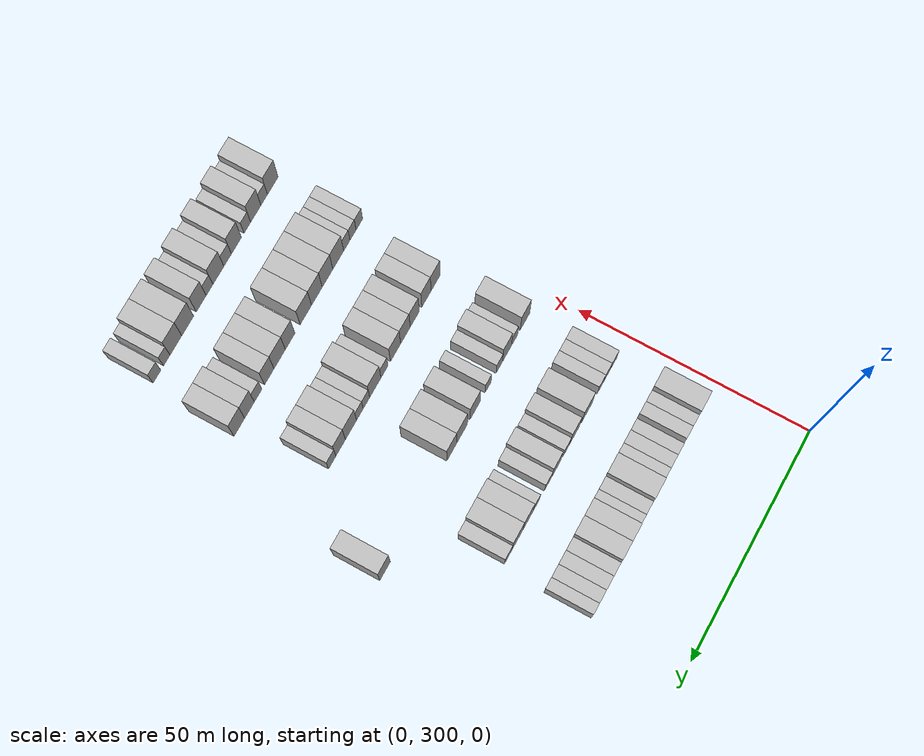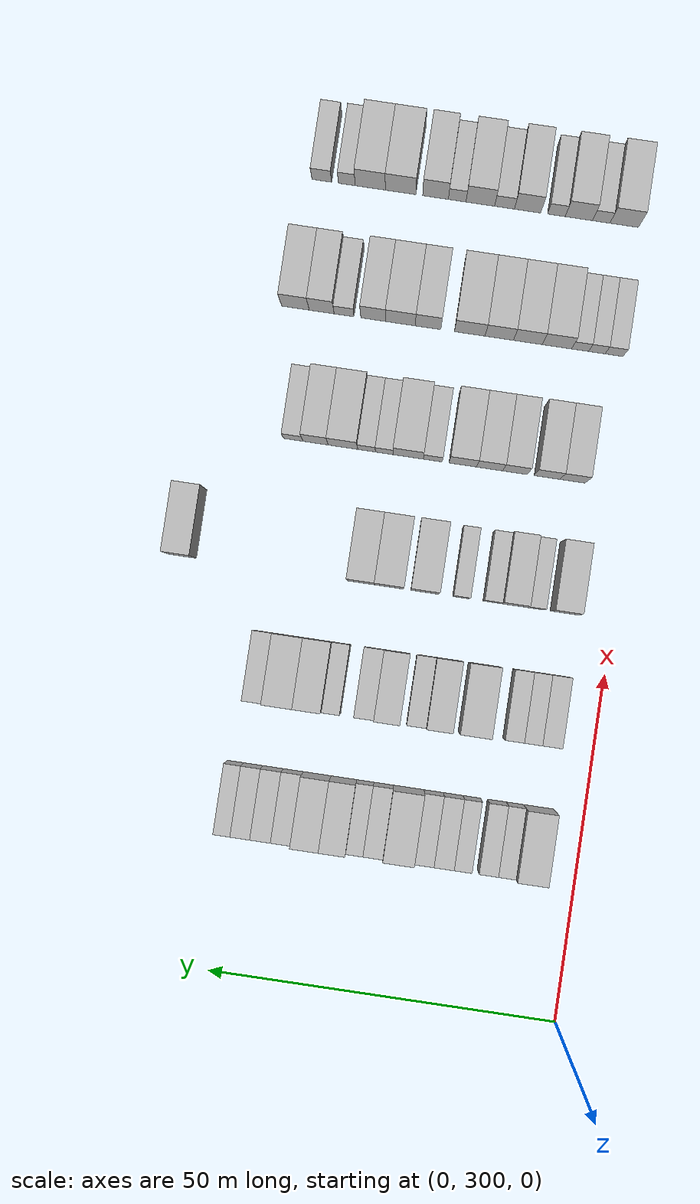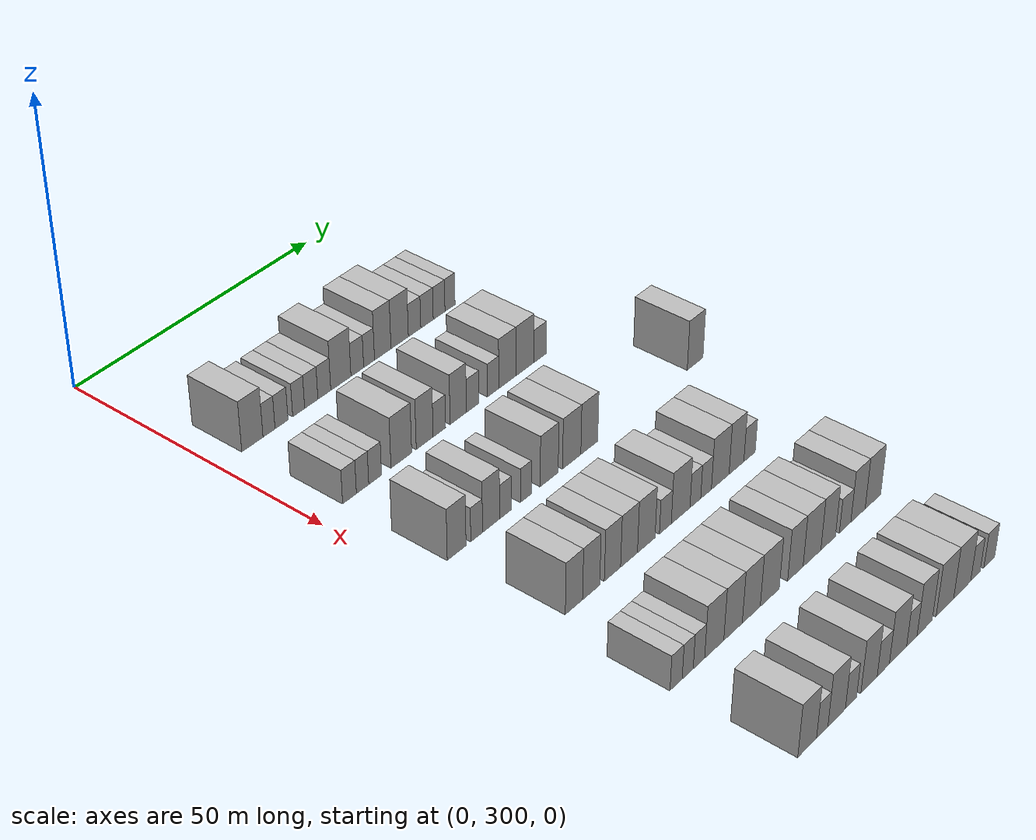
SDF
<sdf version="1.6">
 <world name="default">
  <model name="building_153">
   <static>1</static>
   <pose>25.0000 306.7224 0 0.000000 0.000000 0.000000</pose>
   <link name="link">
    <pose>0 0 4.50 0 0 0</pose>
    <collision name="collision"><geometry><box><size>10.0000 4.3547 9.0000</size></box></geometry></collision>
    <visual name="visual">
     <cast_shadows>0</cast_shadows>
     <geometry><box><size>10.0000 4.3547 9.0000</size></box></geometry>
     <material>
      <script>
       <uri>model://HANNAS_wall/materials/scripts</uri>
       <uri>model://HANNAS_wall/materials/textures</uri>
       <name>vrc/HANNAS_wall</name>
      </script>
     </material>
    </visual>
   </link>
  </model>
  <model name="building_154">
   <static>1</static>
   <pose>25.0000 310.1467 0 0.000000 0.000000 0.000000</pose>
   <link name="link">
    <pose>0 0 3.00 0 0 0</pose>
    <collision name="collision"><geometry><box><size>10.0000 2.4941 6.0000</size></box></geometry></collision>
    <visual name="visual">
     <cast_shadows>0</cast_shadows>
     <geometry><box><size>10.0000 2.4941 6.0000</size></box></geometry>
     <material>
      <script>
       <uri>model://HANNAS_wall/materials/scripts</uri>
       <uri>model://HANNAS_wall/materials/textures</uri>
       <name>vrc/HANNAS_wall</name>
      </script>
     </material>
    </visual>
   </link>
  </model>
  <model name="building_155">
   <static>1</static>
   <pose>25.0000 312.7570 0 0.000000 0.000000 0.000000</pose>
   <link name="link">
    <pose>0 0 3.00 0 0 0</pose>
    <collision name="collision"><geometry><box><size>10.0000 2.7265 6.0000</size></box></geometry></collision>
    <visual name="visual">
     <cast_shadows>0</cast_shadows>
     <geometry><box><size>10.0000 2.7265 6.0000</size></box></geometry>
     <material>
      <script>
       <uri>model://HANNAS_wall/materials/scripts</uri>
       <uri>model://HANNAS_wall/materials/textures</uri>
       <name>vrc/HANNAS_wall</name>
      </script>
     </material>
    </visual>
   </link>
  </model>
  <model name="building_156">
   <static>1</static>
   <pose>25.0000 316.3849 0 0.000000 0.000000 0.000000</pose>
   <link name="link">
    <pose>0 0 3.00 0 0 0</pose>
    <collision name="collision"><geometry><box><size>10.0000 2.5293 6.0000</size></box></geometry></collision>
    <visual name="visual">
     <cast_shadows>0</cast_shadows>
     <geometry><box><size>10.0000 2.5293 6.0000</size></box></geometry>
     <material>
      <script>
       <uri>model://HANNAS_wall/materials/scripts</uri>
       <uri>model://HANNAS_wall/materials/textures</uri>
       <name>vrc/HANNAS_wall</name>
      </script>
     </material>
    </visual>
   </link>
  </model>
  <model name="building_157">
   <static>1</static>
   <pose>25.0000 319.0718 0 0.000000 0.000000 0.000000</pose>
   <link name="link">
    <pose>0 0 3.00 0 0 0</pose>
    <collision name="collision"><geometry><box><size>10.0000 2.8444 6.0000</size></box></geometry></collision>
    <visual name="visual">
     <cast_shadows>0</cast_shadows>
     <geometry><box><size>10.0000 2.8444 6.0000</size></box></geometry>
     <material>
      <script>
       <uri>model://HANNAS_wall/materials/scripts</uri>
       <uri>model://HANNAS_wall/materials/textures</uri>
       <name>vrc/HANNAS_wall</name>
      </script>
     </material>
    </visual>
   </link>
  </model>
  <model name="building_158">
   <static>1</static>
   <pose>25.0000 321.8928 0 0.000000 0.000000 0.000000</pose>
   <link name="link">
    <pose>0 0 3.00 0 0 0</pose>
    <collision name="collision"><geometry><box><size>10.0000 2.7976 6.0000</size></box></geometry></collision>
    <visual name="visual">
     <cast_shadows>0</cast_shadows>
     <geometry><box><size>10.0000 2.7976 6.0000</size></box></geometry>
     <material>
      <script>
       <uri>model://HANNAS_wall/materials/scripts</uri>
       <uri>model://HANNAS_wall/materials/textures</uri>
       <name>vrc/HANNAS_wall</name>
      </script>
     </material>
    </visual>
   </link>
  </model>
  <model name="building_159">
   <static>1</static>
   <pose>25.0000 325.5044 0 0.000000 0.000000 0.000000</pose>
   <link name="link">
    <pose>0 0 4.50 0 0 0</pose>
    <collision name="collision"><geometry><box><size>10.0000 4.4257 9.0000</size></box></geometry></collision>
    <visual name="visual">
     <cast_shadows>0</cast_shadows>
     <geometry><box><size>10.0000 4.4257 9.0000</size></box></geometry>
     <material>
      <script>
       <uri>model://HANNAS_wall/materials/scripts</uri>
       <uri>model://HANNAS_wall/materials/textures</uri>
       <name>vrc/HANNAS_wall</name>
      </script>
     </material>
    </visual>
   </link>
  </model>
  <model name="building_160">
   <static>1</static>
   <pose>25.0000 329.1309 0 0.000000 0.000000 0.000000</pose>
   <link name="link">
    <pose>0 0 3.00 0 0 0</pose>
    <collision name="collision"><geometry><box><size>10.0000 2.8272 6.0000</size></box></geometry></collision>
    <visual name="visual">
     <cast_shadows>0</cast_shadows>
     <geometry><box><size>10.0000 2.8272 6.0000</size></box></geometry>
     <material>
      <script>
       <uri>model://HANNAS_wall/materials/scripts</uri>
       <uri>model://HANNAS_wall/materials/textures</uri>
       <name>vrc/HANNAS_wall</name>
      </script>
     </material>
    </visual>
   </link>
  </model>
  <model name="building_161">
   <static>1</static>
   <pose>25.0000 331.7644 0 0.000000 0.000000 0.000000</pose>
   <link name="link">
    <pose>0 0 3.00 0 0 0</pose>
    <collision name="collision"><geometry><box><size>10.0000 2.4399 6.0000</size></box></geometry></collision>
    <visual name="visual">
     <cast_shadows>0</cast_shadows>
     <geometry><box><size>10.0000 2.4399 6.0000</size></box></geometry>
     <material>
      <script>
       <uri>model://HANNAS_wall/materials/scripts</uri>
       <uri>model://HANNAS_wall/materials/textures</uri>
       <name>vrc/HANNAS_wall</name>
      </script>
     </material>
    </visual>
   </link>
  </model>
  <model name="building_162">
   <static>1</static>
   <pose>25.0000 334.8556 0 0.000000 0.000000 0.000000</pose>
   <link name="link">
    <pose>0 0 4.50 0 0 0</pose>
    <collision name="collision"><geometry><box><size>10.0000 3.7426 9.0000</size></box></geometry></collision>
    <visual name="visual">
     <cast_shadows>0</cast_shadows>
     <geometry><box><size>10.0000 3.7426 9.0000</size></box></geometry>
     <material>
      <script>
       <uri>model://HANNAS_wall/materials/scripts</uri>
       <uri>model://HANNAS_wall/materials/textures</uri>
       <name>vrc/HANNAS_wall</name>
      </script>
     </material>
    </visual>
   </link>
  </model>
  <model name="building_163">
   <static>1</static>
   <pose>25.0000 338.7249 0 0.000000 0.000000 0.000000</pose>
   <link name="link">
    <pose>0 0 4.50 0 0 0</pose>
    <collision name="collision"><geometry><box><size>10.0000 3.9961 9.0000</size></box></geometry></collision>
    <visual name="visual">
     <cast_shadows>0</cast_shadows>
     <geometry><box><size>10.0000 3.9961 9.0000</size></box></geometry>
     <material>
      <script>
       <uri>model://HANNAS_wall/materials/scripts</uri>
       <uri>model://HANNAS_wall/materials/textures</uri>
       <name>vrc/HANNAS_wall</name>
      </script>
     </material>
    </visual>
   </link>
  </model>
  <model name="building_164">
   <static>1</static>
   <pose>25.0000 342.1689 0 0.000000 0.000000 0.000000</pose>
   <link name="link">
    <pose>0 0 3.00 0 0 0</pose>
    <collision name="collision"><geometry><box><size>10.0000 2.8919 6.0000</size></box></geometry></collision>
    <visual name="visual">
     <cast_shadows>0</cast_shadows>
     <geometry><box><size>10.0000 2.8919 6.0000</size></box></geometry>
     <material>
      <script>
       <uri>model://HANNAS_wall/materials/scripts</uri>
       <uri>model://HANNAS_wall/materials/textures</uri>
       <name>vrc/HANNAS_wall</name>
      </script>
     </material>
    </visual>
   </link>
  </model>
  <model name="building_165">
   <static>1</static>
   <pose>25.0000 345.0794 0 0.000000 0.000000 0.000000</pose>
   <link name="link">
    <pose>0 0 3.00 0 0 0</pose>
    <collision name="collision"><geometry><box><size>10.0000 2.9290 6.0000</size></box></geometry></collision>
    <visual name="visual">
     <cast_shadows>0</cast_shadows>
     <geometry><box><size>10.0000 2.9290 6.0000</size></box></geometry>
     <material>
      <script>
       <uri>model://HANNAS_wall/materials/scripts</uri>
       <uri>model://HANNAS_wall/materials/textures</uri>
       <name>vrc/HANNAS_wall</name>
      </script>
     </material>
    </visual>
   </link>
  </model>
  <model name="building_166">
   <static>1</static>
   <pose>25.0000 347.9365 0 0.000000 0.000000 0.000000</pose>
   <link name="link">
    <pose>0 0 3.00 0 0 0</pose>
    <collision name="collision"><geometry><box><size>10.0000 2.7851 6.0000</size></box></geometry></collision>
    <visual name="visual">
     <cast_shadows>0</cast_shadows>
     <geometry><box><size>10.0000 2.7851 6.0000</size></box></geometry>
     <material>
      <script>
       <uri>model://HANNAS_wall/materials/scripts</uri>
       <uri>model://HANNAS_wall/materials/textures</uri>
       <name>vrc/HANNAS_wall</name>
      </script>
     </material>
    </visual>
   </link>
  </model>
  <model name="building_167">
   <static>1</static>
   <pose>25.0000 350.5345 0 0.000000 0.000000 0.000000</pose>
   <link name="link">
    <pose>0 0 3.00 0 0 0</pose>
    <collision name="collision"><geometry><box><size>10.0000 2.4109 6.0000</size></box></geometry></collision>
    <visual name="visual">
     <cast_shadows>0</cast_shadows>
     <geometry><box><size>10.0000 2.4109 6.0000</size></box></geometry>
     <material>
      <script>
       <uri>model://HANNAS_wall/materials/scripts</uri>
       <uri>model://HANNAS_wall/materials/textures</uri>
       <name>vrc/HANNAS_wall</name>
      </script>
     </material>
    </visual>
   </link>
  </model>
  <model name="building_334">
   <static>1</static>
   <pose>44.0000 306.4995 0 0.000000 0.000000 0.000000</pose>
   <link name="link">
    <pose>0 0 3.00 0 0 0</pose>
    <collision name="collision"><geometry><box><size>10.0000 2.8513 6.0000</size></box></geometry></collision>
    <visual name="visual">
     <cast_shadows>0</cast_shadows>
     <geometry><box><size>10.0000 2.8513 6.0000</size></box></geometry>
     <material>
      <script>
       <uri>model://HANNAS_wall/materials/scripts</uri>
       <uri>model://HANNAS_wall/materials/textures</uri>
       <name>vrc/HANNAS_wall</name>
      </script>
     </material>
    </visual>
   </link>
  </model>
  <model name="building_335">
   <static>1</static>
   <pose>44.0000 309.2142 0 0.000000 0.000000 0.000000</pose>
   <link name="link">
    <pose>0 0 3.00 0 0 0</pose>
    <collision name="collision"><geometry><box><size>10.0000 2.5780 6.0000</size></box></geometry></collision>
    <visual name="visual">
     <cast_shadows>0</cast_shadows>
     <geometry><box><size>10.0000 2.5780 6.0000</size></box></geometry>
     <material>
      <script>
       <uri>model://HANNAS_wall/materials/scripts</uri>
       <uri>model://HANNAS_wall/materials/textures</uri>
       <name>vrc/HANNAS_wall</name>
      </script>
     </material>
    </visual>
   </link>
  </model>
  <model name="building_336">
   <static>1</static>
   <pose>44.0000 311.8596 0 0.000000 0.000000 0.000000</pose>
   <link name="link">
    <pose>0 0 3.00 0 0 0</pose>
    <collision name="collision"><geometry><box><size>10.0000 2.7128 6.0000</size></box></geometry></collision>
    <visual name="visual">
     <cast_shadows>0</cast_shadows>
     <geometry><box><size>10.0000 2.7128 6.0000</size></box></geometry>
     <material>
      <script>
       <uri>model://HANNAS_wall/materials/scripts</uri>
       <uri>model://HANNAS_wall/materials/textures</uri>
       <name>vrc/HANNAS_wall</name>
      </script>
     </material>
    </visual>
   </link>
  </model>
  <model name="building_337">
   <static>1</static>
   <pose>44.0000 317.4468 0 0.000000 0.000000 0.000000</pose>
   <link name="link">
    <pose>0 0 4.50 0 0 0</pose>
    <collision name="collision"><geometry><box><size>10.0000 4.4616 9.0000</size></box></geometry></collision>
    <visual name="visual">
     <cast_shadows>0</cast_shadows>
     <geometry><box><size>10.0000 4.4616 9.0000</size></box></geometry>
     <material>
      <script>
       <uri>model://HANNAS_wall/materials/scripts</uri>
       <uri>model://HANNAS_wall/materials/textures</uri>
       <name>vrc/HANNAS_wall</name>
      </script>
     </material>
    </visual>
   </link>
  </model>
  <model name="building_338">
   <static>1</static>
   <pose>44.0000 322.5323 0 0.000000 0.000000 0.000000</pose>
   <link name="link">
    <pose>0 0 4.50 0 0 0</pose>
    <collision name="collision"><geometry><box><size>10.0000 3.7095 9.0000</size></box></geometry></collision>
    <visual name="visual">
     <cast_shadows>0</cast_shadows>
     <geometry><box><size>10.0000 3.7095 9.0000</size></box></geometry>
     <material>
      <script>
       <uri>model://HANNAS_wall/materials/scripts</uri>
       <uri>model://HANNAS_wall/materials/textures</uri>
       <name>vrc/HANNAS_wall</name>
      </script>
     </material>
    </visual>
   </link>
  </model>
  <model name="building_339">
   <static>1</static>
   <pose>44.0000 325.7754 0 0.000000 0.000000 0.000000</pose>
   <link name="link">
    <pose>0 0 3.00 0 0 0</pose>
    <collision name="collision"><geometry><box><size>10.0000 2.7767 6.0000</size></box></geometry></collision>
    <visual name="visual">
     <cast_shadows>0</cast_shadows>
     <geometry><box><size>10.0000 2.7767 6.0000</size></box></geometry>
     <material>
      <script>
       <uri>model://HANNAS_wall/materials/scripts</uri>
       <uri>model://HANNAS_wall/materials/textures</uri>
       <name>vrc/HANNAS_wall</name>
      </script>
     </material>
    </visual>
   </link>
  </model>
  <model name="building_340">
   <static>1</static>
   <pose>44.0000 330.0010 0 0.000000 0.000000 0.000000</pose>
   <link name="link">
    <pose>0 0 4.50 0 0 0</pose>
    <collision name="collision"><geometry><box><size>10.0000 3.6745 9.0000</size></box></geometry></collision>
    <visual name="visual">
     <cast_shadows>0</cast_shadows>
     <geometry><box><size>10.0000 3.6745 9.0000</size></box></geometry>
     <material>
      <script>
       <uri>model://HANNAS_wall/materials/scripts</uri>
       <uri>model://HANNAS_wall/materials/textures</uri>
       <name>vrc/HANNAS_wall</name>
      </script>
     </material>
    </visual>
   </link>
  </model>
  <model name="building_341">
   <static>1</static>
   <pose>44.0000 333.2734 0 0.000000 0.000000 0.000000</pose>
   <link name="link">
    <pose>0 0 3.00 0 0 0</pose>
    <collision name="collision"><geometry><box><size>10.0000 2.8703 6.0000</size></box></geometry></collision>
    <visual name="visual">
     <cast_shadows>0</cast_shadows>
     <geometry><box><size>10.0000 2.8703 6.0000</size></box></geometry>
     <material>
      <script>
       <uri>model://HANNAS_wall/materials/scripts</uri>
       <uri>model://HANNAS_wall/materials/textures</uri>
       <name>vrc/HANNAS_wall</name>
      </script>
     </material>
    </visual>
   </link>
  </model>
  <model name="building_342">
   <static>1</static>
   <pose>44.0000 337.9946 0 0.000000 0.000000 0.000000</pose>
   <link name="link">
    <pose>0 0 3.00 0 0 0</pose>
    <collision name="collision"><geometry><box><size>10.0000 2.5721 6.0000</size></box></geometry></collision>
    <visual name="visual">
     <cast_shadows>0</cast_shadows>
     <geometry><box><size>10.0000 2.5721 6.0000</size></box></geometry>
     <material>
      <script>
       <uri>model://HANNAS_wall/materials/scripts</uri>
       <uri>model://HANNAS_wall/materials/textures</uri>
       <name>vrc/HANNAS_wall</name>
      </script>
     </material>
    </visual>
   </link>
  </model>
  <model name="building_343">
   <static>1</static>
   <pose>44.0000 341.2854 0 0.000000 0.000000 0.000000</pose>
   <link name="link">
    <pose>0 0 4.50 0 0 0</pose>
    <collision name="collision"><geometry><box><size>10.0000 4.0096 9.0000</size></box></geometry></collision>
    <visual name="visual">
     <cast_shadows>0</cast_shadows>
     <geometry><box><size>10.0000 4.0096 9.0000</size></box></geometry>
     <material>
      <script>
       <uri>model://HANNAS_wall/materials/scripts</uri>
       <uri>model://HANNAS_wall/materials/textures</uri>
       <name>vrc/HANNAS_wall</name>
      </script>
     </material>
    </visual>
   </link>
  </model>
  <model name="building_344">
   <static>1</static>
   <pose>44.0000 345.4638 0 0.000000 0.000000 0.000000</pose>
   <link name="link">
    <pose>0 0 4.50 0 0 0</pose>
    <collision name="collision"><geometry><box><size>10.0000 4.3472 9.0000</size></box></geometry></collision>
    <visual name="visual">
     <cast_shadows>0</cast_shadows>
     <geometry><box><size>10.0000 4.3472 9.0000</size></box></geometry>
     <material>
      <script>
       <uri>model://HANNAS_wall/materials/scripts</uri>
       <uri>model://HANNAS_wall/materials/textures</uri>
       <name>vrc/HANNAS_wall</name>
      </script>
     </material>
    </visual>
   </link>
  </model>
  <model name="building_345">
   <static>1</static>
   <pose>44.0000 349.1315 0 0.000000 0.000000 0.000000</pose>
   <link name="link">
    <pose>0 0 3.00 0 0 0</pose>
    <collision name="collision"><geometry><box><size>10.0000 2.9882 6.0000</size></box></geometry></collision>
    <visual name="visual">
     <cast_shadows>0</cast_shadows>
     <geometry><box><size>10.0000 2.9882 6.0000</size></box></geometry>
     <material>
      <script>
       <uri>model://HANNAS_wall/materials/scripts</uri>
       <uri>model://HANNAS_wall/materials/textures</uri>
       <name>vrc/HANNAS_wall</name>
      </script>
     </material>
    </visual>
   </link>
  </model>
  <model name="building_497">
   <static>1</static>
   <pose>63.0000 307.1419 0 0.000000 0.000000 0.000000</pose>
   <link name="link">
    <pose>0 0 4.50 0 0 0</pose>
    <collision name="collision"><geometry><box><size>10.0000 3.9413 9.0000</size></box></geometry></collision>
    <visual name="visual">
     <cast_shadows>0</cast_shadows>
     <geometry><box><size>10.0000 3.9413 9.0000</size></box></geometry>
     <material>
      <script>
       <uri>model://HANNAS_wall/materials/scripts</uri>
       <uri>model://HANNAS_wall/materials/textures</uri>
       <name>vrc/HANNAS_wall</name>
      </script>
     </material>
    </visual>
   </link>
  </model>
  <model name="building_498">
   <static>1</static>
   <pose>63.0000 311.3656 0 0.000000 0.000000 0.000000</pose>
   <link name="link">
    <pose>0 0 3.00 0 0 0</pose>
    <collision name="collision"><geometry><box><size>10.0000 2.5060 6.0000</size></box></geometry></collision>
    <visual name="visual">
     <cast_shadows>0</cast_shadows>
     <geometry><box><size>10.0000 2.5060 6.0000</size></box></geometry>
     <material>
      <script>
       <uri>model://HANNAS_wall/materials/scripts</uri>
       <uri>model://HANNAS_wall/materials/textures</uri>
       <name>vrc/HANNAS_wall</name>
      </script>
     </material>
    </visual>
   </link>
  </model>
  <model name="building_499">
   <static>1</static>
   <pose>63.0000 314.4547 0 0.000000 0.000000 0.000000</pose>
   <link name="link">
    <pose>0 0 4.50 0 0 0</pose>
    <collision name="collision"><geometry><box><size>10.0000 3.6722 9.0000</size></box></geometry></collision>
    <visual name="visual">
     <cast_shadows>0</cast_shadows>
     <geometry><box><size>10.0000 3.6722 9.0000</size></box></geometry>
     <material>
      <script>
       <uri>model://HANNAS_wall/materials/scripts</uri>
       <uri>model://HANNAS_wall/materials/textures</uri>
       <name>vrc/HANNAS_wall</name>
      </script>
     </material>
    </visual>
   </link>
  </model>
  <model name="building_500">
   <static>1</static>
   <pose>63.0000 317.5863 0 0.000000 0.000000 0.000000</pose>
   <link name="link">
    <pose>0 0 3.00 0 0 0</pose>
    <collision name="collision"><geometry><box><size>10.0000 2.5911 6.0000</size></box></geometry></collision>
    <visual name="visual">
     <cast_shadows>0</cast_shadows>
     <geometry><box><size>10.0000 2.5911 6.0000</size></box></geometry>
     <material>
      <script>
       <uri>model://HANNAS_wall/materials/scripts</uri>
       <uri>model://HANNAS_wall/materials/textures</uri>
       <name>vrc/HANNAS_wall</name>
      </script>
     </material>
    </visual>
   </link>
  </model>
  <model name="building_501">
   <static>1</static>
   <pose>63.0000 322.0866 0 0.000000 0.000000 0.000000</pose>
   <link name="link">
    <pose>0 0 3.00 0 0 0</pose>
    <collision name="collision"><geometry><box><size>10.0000 2.4093 6.0000</size></box></geometry></collision>
    <visual name="visual">
     <cast_shadows>0</cast_shadows>
     <geometry><box><size>10.0000 2.4093 6.0000</size></box></geometry>
     <material>
      <script>
       <uri>model://HANNAS_wall/materials/scripts</uri>
       <uri>model://HANNAS_wall/materials/textures</uri>
       <name>vrc/HANNAS_wall</name>
      </script>
     </material>
    </visual>
   </link>
  </model>
  <model name="building_502">
   <static>1</static>
   <pose>63.0000 327.3301 0 0.000000 0.000000 0.000000</pose>
   <link name="link">
    <pose>0 0 4.50 0 0 0</pose>
    <collision name="collision"><geometry><box><size>10.0000 4.0778 9.0000</size></box></geometry></collision>
    <visual name="visual">
     <cast_shadows>0</cast_shadows>
     <geometry><box><size>10.0000 4.0778 9.0000</size></box></geometry>
     <material>
      <script>
       <uri>model://HANNAS_wall/materials/scripts</uri>
       <uri>model://HANNAS_wall/materials/textures</uri>
       <name>vrc/HANNAS_wall</name>
      </script>
     </material>
    </visual>
   </link>
  </model>
  <model name="building_503">
   <static>1</static>
   <pose>63.0000 332.4813 0 0.000000 0.000000 0.000000</pose>
   <link name="link">
    <pose>0 0 4.50 0 0 0</pose>
    <collision name="collision"><geometry><box><size>10.0000 4.2246 9.0000</size></box></geometry></collision>
    <visual name="visual">
     <cast_shadows>0</cast_shadows>
     <geometry><box><size>10.0000 4.2246 9.0000</size></box></geometry>
     <material>
      <script>
       <uri>model://HANNAS_wall/materials/scripts</uri>
       <uri>model://HANNAS_wall/materials/textures</uri>
       <name>vrc/HANNAS_wall</name>
      </script>
     </material>
    </visual>
   </link>
  </model>
  <model name="building_504">
   <static>1</static>
   <pose>63.0000 336.5674 0 0.000000 0.000000 0.000000</pose>
   <link name="link">
    <pose>0 0 4.50 0 0 0</pose>
    <collision name="collision"><geometry><box><size>10.0000 3.9475 9.0000</size></box></geometry></collision>
    <visual name="visual">
     <cast_shadows>0</cast_shadows>
     <geometry><box><size>10.0000 3.9475 9.0000</size></box></geometry>
     <material>
      <script>
       <uri>model://HANNAS_wall/materials/scripts</uri>
       <uri>model://HANNAS_wall/materials/textures</uri>
       <name>vrc/HANNAS_wall</name>
      </script>
     </material>
    </visual>
   </link>
  </model>
  <model name="building_505">
   <static>1</static>
   <pose>63.0000 362.5948 0 0.000000 0.000000 0.000000</pose>
   <link name="link">
    <pose>0 0 4.50 0 0 0</pose>
    <collision name="collision"><geometry><box><size>10.0000 4.0358 9.0000</size></box></geometry></collision>
    <visual name="visual">
     <cast_shadows>0</cast_shadows>
     <geometry><box><size>10.0000 4.0358 9.0000</size></box></geometry>
     <material>
      <script>
       <uri>model://HANNAS_wall/materials/scripts</uri>
       <uri>model://HANNAS_wall/materials/textures</uri>
       <name>vrc/HANNAS_wall</name>
      </script>
     </material>
    </visual>
   </link>
  </model>
  <model name="building_665">
   <static>1</static>
   <pose>82.0000 308.5856 0 0.000000 0.000000 0.000000</pose>
   <link name="link">
    <pose>0 0 4.50 0 0 0</pose>
    <collision name="collision"><geometry><box><size>10.0000 3.6973 9.0000</size></box></geometry></collision>
    <visual name="visual">
     <cast_shadows>0</cast_shadows>
     <geometry><box><size>10.0000 3.6973 9.0000</size></box></geometry>
     <material>
      <script>
       <uri>model://HANNAS_wall/materials/scripts</uri>
       <uri>model://HANNAS_wall/materials/textures</uri>
       <name>vrc/HANNAS_wall</name>
      </script>
     </material>
    </visual>
   </link>
  </model>
  <model name="building_666">
   <static>1</static>
   <pose>82.0000 312.3072 0 0.000000 0.000000 0.000000</pose>
   <link name="link">
    <pose>0 0 4.50 0 0 0</pose>
    <collision name="collision"><geometry><box><size>10.0000 3.7458 9.0000</size></box></geometry></collision>
    <visual name="visual">
     <cast_shadows>0</cast_shadows>
     <geometry><box><size>10.0000 3.7458 9.0000</size></box></geometry>
     <material>
      <script>
       <uri>model://HANNAS_wall/materials/scripts</uri>
       <uri>model://HANNAS_wall/materials/textures</uri>
       <name>vrc/HANNAS_wall</name>
      </script>
     </material>
    </visual>
   </link>
  </model>
  <model name="building_667">
   <static>1</static>
   <pose>82.0000 316.9858 0 0.000000 0.000000 0.000000</pose>
   <link name="link">
    <pose>0 0 4.50 0 0 0</pose>
    <collision name="collision"><geometry><box><size>10.0000 3.6114 9.0000</size></box></geometry></collision>
    <visual name="visual">
     <cast_shadows>0</cast_shadows>
     <geometry><box><size>10.0000 3.6114 9.0000</size></box></geometry>
     <material>
      <script>
       <uri>model://HANNAS_wall/materials/scripts</uri>
       <uri>model://HANNAS_wall/materials/textures</uri>
       <name>vrc/HANNAS_wall</name>
      </script>
     </material>
    </visual>
   </link>
  </model>
  <model name="building_668">
   <static>1</static>
   <pose>82.0000 320.6931 0 0.000000 0.000000 0.000000</pose>
   <link name="link">
    <pose>0 0 4.50 0 0 0</pose>
    <collision name="collision"><geometry><box><size>10.0000 3.8030 9.0000</size></box></geometry></collision>
    <visual name="visual">
     <cast_shadows>0</cast_shadows>
     <geometry><box><size>10.0000 3.8030 9.0000</size></box></geometry>
     <material>
      <script>
       <uri>model://HANNAS_wall/materials/scripts</uri>
       <uri>model://HANNAS_wall/materials/textures</uri>
       <name>vrc/HANNAS_wall</name>
      </script>
     </material>
    </visual>
   </link>
  </model>
  <model name="building_669">
   <static>1</static>
   <pose>82.0000 324.6068 0 0.000000 0.000000 0.000000</pose>
   <link name="link">
    <pose>0 0 4.50 0 0 0</pose>
    <collision name="collision"><geometry><box><size>10.0000 4.0244 9.0000</size></box></geometry></collision>
    <visual name="visual">
     <cast_shadows>0</cast_shadows>
     <geometry><box><size>10.0000 4.0244 9.0000</size></box></geometry>
     <material>
      <script>
       <uri>model://HANNAS_wall/materials/scripts</uri>
       <uri>model://HANNAS_wall/materials/textures</uri>
       <name>vrc/HANNAS_wall</name>
      </script>
     </material>
    </visual>
   </link>
  </model>
  <model name="building_670">
   <static>1</static>
   <pose>82.0000 328.9953 0 0.000000 0.000000 0.000000</pose>
   <link name="link">
    <pose>0 0 3.00 0 0 0</pose>
    <collision name="collision"><geometry><box><size>10.0000 2.7526 6.0000</size></box></geometry></collision>
    <visual name="visual">
     <cast_shadows>0</cast_shadows>
     <geometry><box><size>10.0000 2.7526 6.0000</size></box></geometry>
     <material>
      <script>
       <uri>model://HANNAS_wall/materials/scripts</uri>
       <uri>model://HANNAS_wall/materials/textures</uri>
       <name>vrc/HANNAS_wall</name>
      </script>
     </material>
    </visual>
   </link>
  </model>
  <model name="building_671">
   <static>1</static>
   <pose>82.0000 332.5739 0 0.000000 0.000000 0.000000</pose>
   <link name="link">
    <pose>0 0 4.50 0 0 0</pose>
    <collision name="collision"><geometry><box><size>10.0000 4.4046 9.0000</size></box></geometry></collision>
    <visual name="visual">
     <cast_shadows>0</cast_shadows>
     <geometry><box><size>10.0000 4.4046 9.0000</size></box></geometry>
     <material>
      <script>
       <uri>model://HANNAS_wall/materials/scripts</uri>
       <uri>model://HANNAS_wall/materials/textures</uri>
       <name>vrc/HANNAS_wall</name>
      </script>
     </material>
    </visual>
   </link>
  </model>
  <model name="building_672">
   <static>1</static>
   <pose>82.0000 336.0584 0 0.000000 0.000000 0.000000</pose>
   <link name="link">
    <pose>0 0 3.00 0 0 0</pose>
    <collision name="collision"><geometry><box><size>10.0000 2.5643 6.0000</size></box></geometry></collision>
    <visual name="visual">
     <cast_shadows>0</cast_shadows>
     <geometry><box><size>10.0000 2.5643 6.0000</size></box></geometry>
     <material>
      <script>
       <uri>model://HANNAS_wall/materials/scripts</uri>
       <uri>model://HANNAS_wall/materials/textures</uri>
       <name>vrc/HANNAS_wall</name>
      </script>
     </material>
    </visual>
   </link>
  </model>
  <model name="building_673">
   <static>1</static>
   <pose>82.0000 338.6314 0 0.000000 0.000000 0.000000</pose>
   <link name="link">
    <pose>0 0 3.00 0 0 0</pose>
    <collision name="collision"><geometry><box><size>10.0000 2.5817 6.0000</size></box></geometry></collision>
    <visual name="visual">
     <cast_shadows>0</cast_shadows>
     <geometry><box><size>10.0000 2.5817 6.0000</size></box></geometry>
     <material>
      <script>
       <uri>model://HANNAS_wall/materials/scripts</uri>
       <uri>model://HANNAS_wall/materials/textures</uri>
       <name>vrc/HANNAS_wall</name>
      </script>
     </material>
    </visual>
   </link>
  </model>
  <model name="building_674">
   <static>1</static>
   <pose>82.0000 342.0741 0 0.000000 0.000000 0.000000</pose>
   <link name="link">
    <pose>0 0 4.50 0 0 0</pose>
    <collision name="collision"><geometry><box><size>10.0000 4.3038 9.0000</size></box></geometry></collision>
    <visual name="visual">
     <cast_shadows>0</cast_shadows>
     <geometry><box><size>10.0000 4.3038 9.0000</size></box></geometry>
     <material>
      <script>
       <uri>model://HANNAS_wall/materials/scripts</uri>
       <uri>model://HANNAS_wall/materials/textures</uri>
       <name>vrc/HANNAS_wall</name>
      </script>
     </material>
    </visual>
   </link>
  </model>
  <model name="building_675">
   <static>1</static>
   <pose>82.0000 346.0599 0 0.000000 0.000000 0.000000</pose>
   <link name="link">
    <pose>0 0 4.50 0 0 0</pose>
    <collision name="collision"><geometry><box><size>10.0000 3.6678 9.0000</size></box></geometry></collision>
    <visual name="visual">
     <cast_shadows>0</cast_shadows>
     <geometry><box><size>10.0000 3.6678 9.0000</size></box></geometry>
     <material>
      <script>
       <uri>model://HANNAS_wall/materials/scripts</uri>
       <uri>model://HANNAS_wall/materials/textures</uri>
       <name>vrc/HANNAS_wall</name>
      </script>
     </material>
    </visual>
   </link>
  </model>
  <model name="building_676">
   <static>1</static>
   <pose>82.0000 349.3151 0 0.000000 0.000000 0.000000</pose>
   <link name="link">
    <pose>0 0 3.00 0 0 0</pose>
    <collision name="collision"><geometry><box><size>10.0000 2.8426 6.0000</size></box></geometry></collision>
    <visual name="visual">
     <cast_shadows>0</cast_shadows>
     <geometry><box><size>10.0000 2.8426 6.0000</size></box></geometry>
     <material>
      <script>
       <uri>model://HANNAS_wall/materials/scripts</uri>
       <uri>model://HANNAS_wall/materials/textures</uri>
       <name>vrc/HANNAS_wall</name>
      </script>
     </material>
    </visual>
   </link>
  </model>
  <model name="building_843">
   <static>1</static>
   <pose>101.0000 305.2735 0 0.000000 0.000000 0.000000</pose>
   <link name="link">
    <pose>0 0 3.00 0 0 0</pose>
    <collision name="collision"><geometry><box><size>10.0000 2.6299 6.0000</size></box></geometry></collision>
    <visual name="visual">
     <cast_shadows>0</cast_shadows>
     <geometry><box><size>10.0000 2.6299 6.0000</size></box></geometry>
     <material>
      <script>
       <uri>model://HANNAS_wall/materials/scripts</uri>
       <uri>model://HANNAS_wall/materials/textures</uri>
       <name>vrc/HANNAS_wall</name>
      </script>
     </material>
    </visual>
   </link>
  </model>
  <model name="building_844">
   <static>1</static>
   <pose>101.0000 307.7940 0 0.000000 0.000000 0.000000</pose>
   <link name="link">
    <pose>0 0 3.00 0 0 0</pose>
    <collision name="collision"><geometry><box><size>10.0000 2.4112 6.0000</size></box></geometry></collision>
    <visual name="visual">
     <cast_shadows>0</cast_shadows>
     <geometry><box><size>10.0000 2.4112 6.0000</size></box></geometry>
     <material>
      <script>
       <uri>model://HANNAS_wall/materials/scripts</uri>
       <uri>model://HANNAS_wall/materials/textures</uri>
       <name>vrc/HANNAS_wall</name>
      </script>
     </material>
    </visual>
   </link>
  </model>
  <model name="building_845">
   <static>1</static>
   <pose>101.0000 310.2522 0 0.000000 0.000000 0.000000</pose>
   <link name="link">
    <pose>0 0 3.00 0 0 0</pose>
    <collision name="collision"><geometry><box><size>10.0000 2.5051 6.0000</size></box></geometry></collision>
    <visual name="visual">
     <cast_shadows>0</cast_shadows>
     <geometry><box><size>10.0000 2.5051 6.0000</size></box></geometry>
     <material>
      <script>
       <uri>model://HANNAS_wall/materials/scripts</uri>
       <uri>model://HANNAS_wall/materials/textures</uri>
       <name>vrc/HANNAS_wall</name>
      </script>
     </material>
    </visual>
   </link>
  </model>
  <model name="building_846">
   <static>1</static>
   <pose>101.0000 313.6459 0 0.000000 0.000000 0.000000</pose>
   <link name="link">
    <pose>0 0 4.50 0 0 0</pose>
    <collision name="collision"><geometry><box><size>10.0000 4.2824 9.0000</size></box></geometry></collision>
    <visual name="visual">
     <cast_shadows>0</cast_shadows>
     <geometry><box><size>10.0000 4.2824 9.0000</size></box></geometry>
     <material>
      <script>
       <uri>model://HANNAS_wall/materials/scripts</uri>
       <uri>model://HANNAS_wall/materials/textures</uri>
       <name>vrc/HANNAS_wall</name>
      </script>
     </material>
    </visual>
   </link>
  </model>
  <model name="building_847">
   <static>1</static>
   <pose>101.0000 317.8871 0 0.000000 0.000000 0.000000</pose>
   <link name="link">
    <pose>0 0 4.50 0 0 0</pose>
    <collision name="collision"><geometry><box><size>10.0000 4.2000 9.0000</size></box></geometry></collision>
    <visual name="visual">
     <cast_shadows>0</cast_shadows>
     <geometry><box><size>10.0000 4.2000 9.0000</size></box></geometry>
     <material>
      <script>
       <uri>model://HANNAS_wall/materials/scripts</uri>
       <uri>model://HANNAS_wall/materials/textures</uri>
       <name>vrc/HANNAS_wall</name>
      </script>
     </material>
    </visual>
   </link>
  </model>
  <model name="building_848">
   <static>1</static>
   <pose>101.0000 322.0726 0 0.000000 0.000000 0.000000</pose>
   <link name="link">
    <pose>0 0 4.50 0 0 0</pose>
    <collision name="collision"><geometry><box><size>10.0000 4.1710 9.0000</size></box></geometry></collision>
    <visual name="visual">
     <cast_shadows>0</cast_shadows>
     <geometry><box><size>10.0000 4.1710 9.0000</size></box></geometry>
     <material>
      <script>
       <uri>model://HANNAS_wall/materials/scripts</uri>
       <uri>model://HANNAS_wall/materials/textures</uri>
       <name>vrc/HANNAS_wall</name>
      </script>
     </material>
    </visual>
   </link>
  </model>
  <model name="building_849">
   <static>1</static>
   <pose>101.0000 326.3875 0 0.000000 0.000000 0.000000</pose>
   <link name="link">
    <pose>0 0 4.50 0 0 0</pose>
    <collision name="collision"><geometry><box><size>10.0000 4.4587 9.0000</size></box></geometry></collision>
    <visual name="visual">
     <cast_shadows>0</cast_shadows>
     <geometry><box><size>10.0000 4.4587 9.0000</size></box></geometry>
     <material>
      <script>
       <uri>model://HANNAS_wall/materials/scripts</uri>
       <uri>model://HANNAS_wall/materials/textures</uri>
       <name>vrc/HANNAS_wall</name>
      </script>
     </material>
    </visual>
   </link>
  </model>
  <model name="building_850">
   <static>1</static>
   <pose>101.0000 332.4823 0 0.000000 0.000000 0.000000</pose>
   <link name="link">
    <pose>0 0 4.50 0 0 0</pose>
    <collision name="collision"><geometry><box><size>10.0000 3.7309 9.0000</size></box></geometry></collision>
    <visual name="visual">
     <cast_shadows>0</cast_shadows>
     <geometry><box><size>10.0000 3.7309 9.0000</size></box></geometry>
     <material>
      <script>
       <uri>model://HANNAS_wall/materials/scripts</uri>
       <uri>model://HANNAS_wall/materials/textures</uri>
       <name>vrc/HANNAS_wall</name>
      </script>
     </material>
    </visual>
   </link>
  </model>
  <model name="building_851">
   <static>1</static>
   <pose>101.0000 336.5234 0 0.000000 0.000000 0.000000</pose>
   <link name="link">
    <pose>0 0 4.50 0 0 0</pose>
    <collision name="collision"><geometry><box><size>10.0000 4.3515 9.0000</size></box></geometry></collision>
    <visual name="visual">
     <cast_shadows>0</cast_shadows>
     <geometry><box><size>10.0000 4.3515 9.0000</size></box></geometry>
     <material>
      <script>
       <uri>model://HANNAS_wall/materials/scripts</uri>
       <uri>model://HANNAS_wall/materials/textures</uri>
       <name>vrc/HANNAS_wall</name>
      </script>
     </material>
    </visual>
   </link>
  </model>
  <model name="building_852">
   <static>1</static>
   <pose>101.0000 340.5106 0 0.000000 0.000000 0.000000</pose>
   <link name="link">
    <pose>0 0 4.50 0 0 0</pose>
    <collision name="collision"><geometry><box><size>10.0000 3.6228 9.0000</size></box></geometry></collision>
    <visual name="visual">
     <cast_shadows>0</cast_shadows>
     <geometry><box><size>10.0000 3.6228 9.0000</size></box></geometry>
     <material>
      <script>
       <uri>model://HANNAS_wall/materials/scripts</uri>
       <uri>model://HANNAS_wall/materials/textures</uri>
       <name>vrc/HANNAS_wall</name>
      </script>
     </material>
    </visual>
   </link>
  </model>
  <model name="building_853">
   <static>1</static>
   <pose>101.0000 344.7670 0 0.000000 0.000000 0.000000</pose>
   <link name="link">
    <pose>0 0 3.00 0 0 0</pose>
    <collision name="collision"><geometry><box><size>10.0000 2.8900 6.0000</size></box></geometry></collision>
    <visual name="visual">
     <cast_shadows>0</cast_shadows>
     <geometry><box><size>10.0000 2.8900 6.0000</size></box></geometry>
     <material>
      <script>
       <uri>model://HANNAS_wall/materials/scripts</uri>
       <uri>model://HANNAS_wall/materials/textures</uri>
       <name>vrc/HANNAS_wall</name>
      </script>
     </material>
    </visual>
   </link>
  </model>
  <model name="building_854">
   <static>1</static>
   <pose>101.0000 348.0384 0 0.000000 0.000000 0.000000</pose>
   <link name="link">
    <pose>0 0 4.50 0 0 0</pose>
    <collision name="collision"><geometry><box><size>10.0000 3.6527 9.0000</size></box></geometry></collision>
    <visual name="visual">
     <cast_shadows>0</cast_shadows>
     <geometry><box><size>10.0000 3.6527 9.0000</size></box></geometry>
     <material>
      <script>
       <uri>model://HANNAS_wall/materials/scripts</uri>
       <uri>model://HANNAS_wall/materials/textures</uri>
       <name>vrc/HANNAS_wall</name>
      </script>
     </material>
    </visual>
   </link>
  </model>
  <model name="building_855">
   <static>1</static>
   <pose>101.0000 351.8829 0 0.000000 0.000000 0.000000</pose>
   <link name="link">
    <pose>0 0 4.50 0 0 0</pose>
    <collision name="collision"><geometry><box><size>10.0000 4.0363 9.0000</size></box></geometry></collision>
    <visual name="visual">
     <cast_shadows>0</cast_shadows>
     <geometry><box><size>10.0000 4.0363 9.0000</size></box></geometry>
     <material>
      <script>
       <uri>model://HANNAS_wall/materials/scripts</uri>
       <uri>model://HANNAS_wall/materials/textures</uri>
       <name>vrc/HANNAS_wall</name>
      </script>
     </material>
    </visual>
   </link>
  </model>
  <model name="building_1022">
   <static>1</static>
   <pose>120.0000 306.5096 0 0.000000 0.000000 0.000000</pose>
   <link name="link">
    <pose>0 0 4.50 0 0 0</pose>
    <collision name="collision"><geometry><box><size>10.0000 4.1835 9.0000</size></box></geometry></collision>
    <visual name="visual">
     <cast_shadows>0</cast_shadows>
     <geometry><box><size>10.0000 4.1835 9.0000</size></box></geometry>
     <material>
      <script>
       <uri>model://HANNAS_wall/materials/scripts</uri>
       <uri>model://HANNAS_wall/materials/textures</uri>
       <name>vrc/HANNAS_wall</name>
      </script>
     </material>
    </visual>
   </link>
  </model>
  <model name="building_1023">
   <static>1</static>
   <pose>120.0000 309.8855 0 0.000000 0.000000 0.000000</pose>
   <link name="link">
    <pose>0 0 3.00 0 0 0</pose>
    <collision name="collision"><geometry><box><size>10.0000 2.5682 6.0000</size></box></geometry></collision>
    <visual name="visual">
     <cast_shadows>0</cast_shadows>
     <geometry><box><size>10.0000 2.5682 6.0000</size></box></geometry>
     <material>
      <script>
       <uri>model://HANNAS_wall/materials/scripts</uri>
       <uri>model://HANNAS_wall/materials/textures</uri>
       <name>vrc/HANNAS_wall</name>
      </script>
     </material>
    </visual>
   </link>
  </model>
  <model name="building_1024">
   <static>1</static>
   <pose>120.0000 313.1671 0 0.000000 0.000000 0.000000</pose>
   <link name="link">
    <pose>0 0 4.50 0 0 0</pose>
    <collision name="collision"><geometry><box><size>10.0000 3.9950 9.0000</size></box></geometry></collision>
    <visual name="visual">
     <cast_shadows>0</cast_shadows>
     <geometry><box><size>10.0000 3.9950 9.0000</size></box></geometry>
     <material>
      <script>
       <uri>model://HANNAS_wall/materials/scripts</uri>
       <uri>model://HANNAS_wall/materials/textures</uri>
       <name>vrc/HANNAS_wall</name>
      </script>
     </material>
    </visual>
   </link>
  </model>
  <model name="building_1025">
   <static>1</static>
   <pose>120.0000 316.4611 0 0.000000 0.000000 0.000000</pose>
   <link name="link">
    <pose>0 0 3.00 0 0 0</pose>
    <collision name="collision"><geometry><box><size>10.0000 2.5931 6.0000</size></box></geometry></collision>
    <visual name="visual">
     <cast_shadows>0</cast_shadows>
     <geometry><box><size>10.0000 2.5931 6.0000</size></box></geometry>
     <material>
      <script>
       <uri>model://HANNAS_wall/materials/scripts</uri>
       <uri>model://HANNAS_wall/materials/textures</uri>
       <name>vrc/HANNAS_wall</name>
      </script>
     </material>
    </visual>
   </link>
  </model>
  <model name="building_1026">
   <static>1</static>
   <pose>120.0000 320.6916 0 0.000000 0.000000 0.000000</pose>
   <link name="link">
    <pose>0 0 4.50 0 0 0</pose>
    <collision name="collision"><geometry><box><size>10.0000 3.8678 9.0000</size></box></geometry></collision>
    <visual name="visual">
     <cast_shadows>0</cast_shadows>
     <geometry><box><size>10.0000 3.8678 9.0000</size></box></geometry>
     <material>
      <script>
       <uri>model://HANNAS_wall/materials/scripts</uri>
       <uri>model://HANNAS_wall/materials/textures</uri>
       <name>vrc/HANNAS_wall</name>
      </script>
     </material>
    </visual>
   </link>
  </model>
  <model name="building_1027">
   <static>1</static>
   <pose>120.0000 324.0793 0 0.000000 0.000000 0.000000</pose>
   <link name="link">
    <pose>0 0 3.00 0 0 0</pose>
    <collision name="collision"><geometry><box><size>10.0000 2.9076 6.0000</size></box></geometry></collision>
    <visual name="visual">
     <cast_shadows>0</cast_shadows>
     <geometry><box><size>10.0000 2.9076 6.0000</size></box></geometry>
     <material>
      <script>
       <uri>model://HANNAS_wall/materials/scripts</uri>
       <uri>model://HANNAS_wall/materials/textures</uri>
       <name>vrc/HANNAS_wall</name>
      </script>
     </material>
    </visual>
   </link>
  </model>
  <model name="building_1028">
   <static>1</static>
   <pose>120.0000 327.6346 0 0.000000 0.000000 0.000000</pose>
   <link name="link">
    <pose>0 0 4.50 0 0 0</pose>
    <collision name="collision"><geometry><box><size>10.0000 4.2031 9.0000</size></box></geometry></collision>
    <visual name="visual">
     <cast_shadows>0</cast_shadows>
     <geometry><box><size>10.0000 4.2031 9.0000</size></box></geometry>
     <material>
      <script>
       <uri>model://HANNAS_wall/materials/scripts</uri>
       <uri>model://HANNAS_wall/materials/textures</uri>
       <name>vrc/HANNAS_wall</name>
      </script>
     </material>
    </visual>
   </link>
  </model>
  <model name="building_1029">
   <static>1</static>
   <pose>120.0000 331.0266 0 0.000000 0.000000 0.000000</pose>
   <link name="link">
    <pose>0 0 3.00 0 0 0</pose>
    <collision name="collision"><geometry><box><size>10.0000 2.5808 6.0000</size></box></geometry></collision>
    <visual name="visual">
     <cast_shadows>0</cast_shadows>
     <geometry><box><size>10.0000 2.5808 6.0000</size></box></geometry>
     <material>
      <script>
       <uri>model://HANNAS_wall/materials/scripts</uri>
       <uri>model://HANNAS_wall/materials/textures</uri>
       <name>vrc/HANNAS_wall</name>
      </script>
     </material>
    </visual>
   </link>
  </model>
  <model name="building_1030">
   <static>1</static>
   <pose>120.0000 334.2035 0 0.000000 0.000000 0.000000</pose>
   <link name="link">
    <pose>0 0 4.50 0 0 0</pose>
    <collision name="collision"><geometry><box><size>10.0000 3.7729 9.0000</size></box></geometry></collision>
    <visual name="visual">
     <cast_shadows>0</cast_shadows>
     <geometry><box><size>10.0000 3.7729 9.0000</size></box></geometry>
     <material>
      <script>
       <uri>model://HANNAS_wall/materials/scripts</uri>
       <uri>model://HANNAS_wall/materials/textures</uri>
       <name>vrc/HANNAS_wall</name>
      </script>
     </material>
    </visual>
   </link>
  </model>
  <model name="building_1031">
   <static>1</static>
   <pose>120.0000 339.3293 0 0.000000 0.000000 0.000000</pose>
   <link name="link">
    <pose>0 0 4.50 0 0 0</pose>
    <collision name="collision"><geometry><box><size>10.0000 4.4787 9.0000</size></box></geometry></collision>
    <visual name="visual">
     <cast_shadows>0</cast_shadows>
     <geometry><box><size>10.0000 4.4787 9.0000</size></box></geometry>
     <material>
      <script>
       <uri>model://HANNAS_wall/materials/scripts</uri>
       <uri>model://HANNAS_wall/materials/textures</uri>
       <name>vrc/HANNAS_wall</name>
      </script>
     </material>
    </visual>
   </link>
  </model>
  <model name="building_1032">
   <static>1</static>
   <pose>120.0000 343.7752 0 0.000000 0.000000 0.000000</pose>
   <link name="link">
    <pose>0 0 4.50 0 0 0</pose>
    <collision name="collision"><geometry><box><size>10.0000 4.4132 9.0000</size></box></geometry></collision>
    <visual name="visual">
     <cast_shadows>0</cast_shadows>
     <geometry><box><size>10.0000 4.4132 9.0000</size></box></geometry>
     <material>
      <script>
       <uri>model://HANNAS_wall/materials/scripts</uri>
       <uri>model://HANNAS_wall/materials/textures</uri>
       <name>vrc/HANNAS_wall</name>
      </script>
     </material>
    </visual>
   </link>
  </model>
  <model name="building_1033">
   <static>1</static>
   <pose>120.0000 347.2129 0 0.000000 0.000000 0.000000</pose>
   <link name="link">
    <pose>0 0 3.00 0 0 0</pose>
    <collision name="collision"><geometry><box><size>10.0000 2.4622 6.0000</size></box></geometry></collision>
    <visual name="visual">
     <cast_shadows>0</cast_shadows>
     <geometry><box><size>10.0000 2.4622 6.0000</size></box></geometry>
     <material>
      <script>
       <uri>model://HANNAS_wall/materials/scripts</uri>
       <uri>model://HANNAS_wall/materials/textures</uri>
       <name>vrc/HANNAS_wall</name>
      </script>
     </material>
    </visual>
   </link>
  </model>
  <model name="building_1034">
   <static>1</static>
   <pose>120.0000 350.8903 0 0.000000 0.000000 0.000000</pose>
   <link name="link">
    <pose>0 0 3.00 0 0 0</pose>
    <collision name="collision"><geometry><box><size>10.0000 2.8927 6.0000</size></box></geometry></collision>
    <visual name="visual">
     <cast_shadows>0</cast_shadows>
     <geometry><box><size>10.0000 2.8927 6.0000</size></box></geometry>
     <material>
      <script>
       <uri>model://HANNAS_wall/materials/scripts</uri>
       <uri>model://HANNAS_wall/materials/textures</uri>
       <name>vrc/HANNAS_wall</name>
      </script>
     </material>
    </visual>
   </link>
  </model>
 </world>
</sdf>
